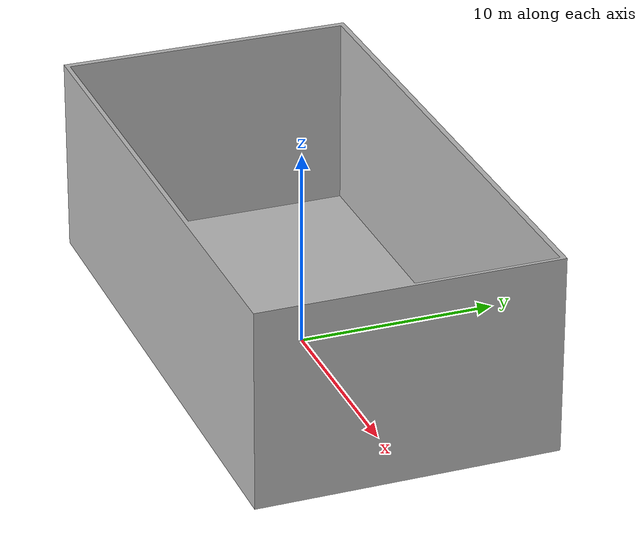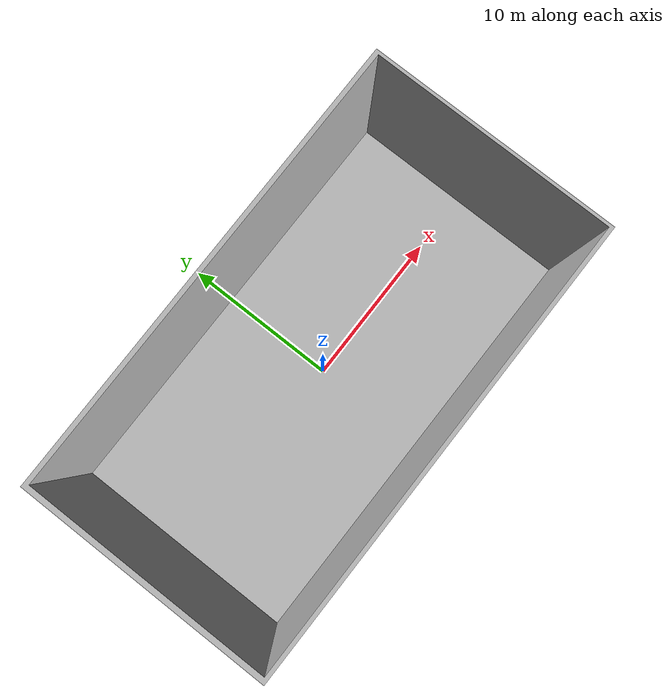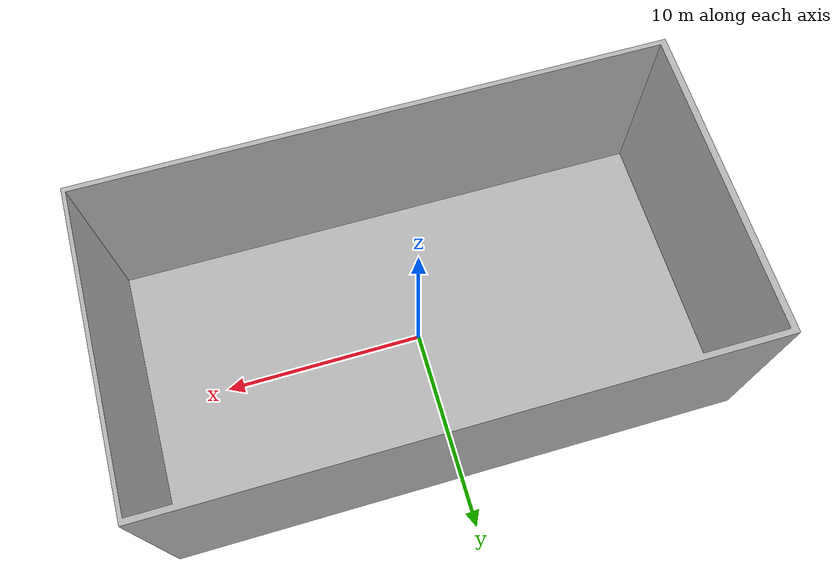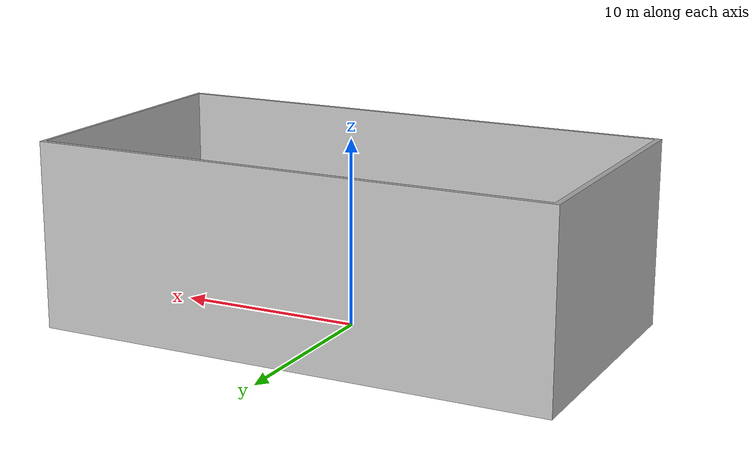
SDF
<?xml version='1.0'?>
<sdf version="1.6">
	<model name="Arena">
      <static>true</static>
      <link name="body">
        <collision name = 'collision'>
          <geometry>
            <mesh>
              <uri>model://Arena/ArenaTrue.dae</uri>
            </mesh>
          </geometry>
        </collision>
        <visual name="visual">
          <geometry>
            <mesh>
            	<uri>model://Arena/ArenaTrue.dae</uri>
            	<scale>1 1 1</scale>
            </mesh>
          </geometry>
        </visual>
      </link>
    </model>
</sdf>
